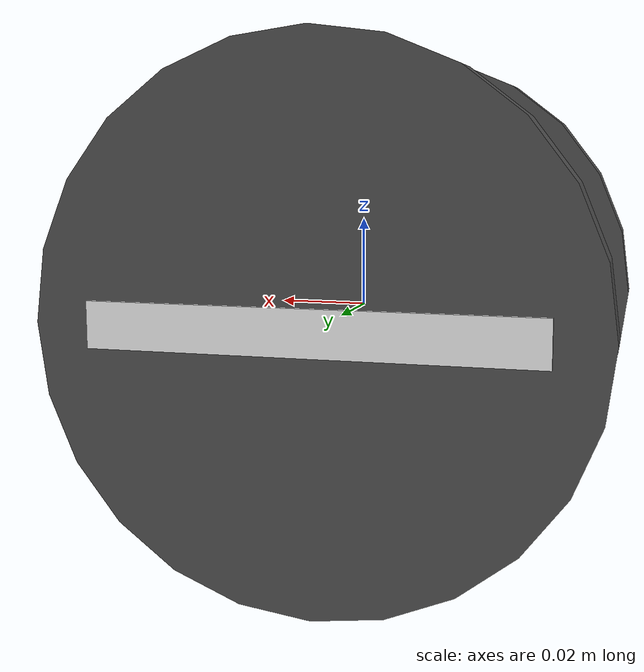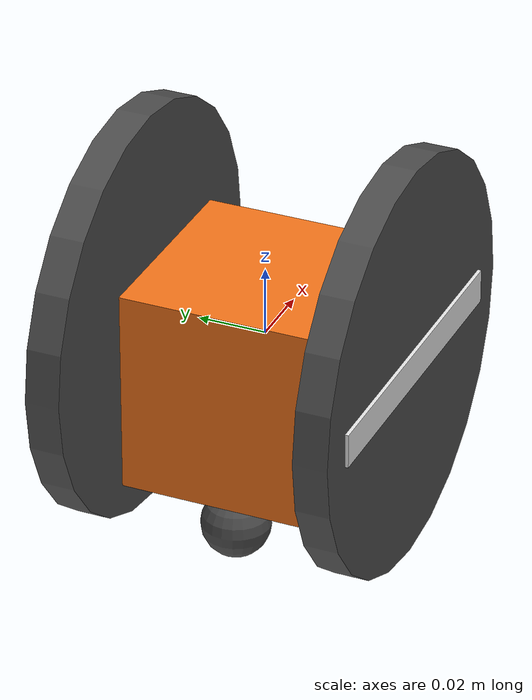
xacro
<?xml version="1.0"?>
<robot name="sphere_scout" xmlns:xacro="http://www.ros.org/wiki/xacro">

  <!-- placeholder values -->
  <xacro:property name="wheel_radius" value="0.06"/>
  <xacro:property name="wheel_width" value="0.01"/>
  <xacro:property name="wheel_mass" value="0.04"/>
  <xacro:property name="cube_size" value="0.06"/>
  <xacro:property name="cube_z" value="-0.01"/>          <!-- cube centre below the axle -->
  <xacro:property name="core_mass" value="0.22"/>
  <xacro:property name="core_com_z" value="-0.025"/>     <!-- ballast keeps the CoM low -->
  <xacro:property name="caster_radius" value="0.01"/>
  <xacro:property name="caster_x" value="0.02"/>         <!-- front and back of the cube -->
  <xacro:property name="slider_mass" value="0.01"/>
  <xacro:property name="shell_extension_max" value="0.01"/>
  <xacro:property name="wheel_y" value="${cube_size / 2 + 0.004 + wheel_width / 2}"/>
  <xacro:property name="wheel_mu" value="0.9"/>
  <xacro:property name="gyro_noise" value="0.001"/>      <!-- rad/s, about MPU-6050 at 100 Hz -->
  <xacro:property name="accel_noise" value="0.04"/>

  <link name="base_link">
    <inertial>
      <origin xyz="0 0 ${core_com_z}"/>
      <mass value="${core_mass}"/>
      <inertia ixx="${core_mass * cube_size**2 / 6}" iyy="${core_mass * cube_size**2 / 6}"
               izz="${core_mass * cube_size**2 / 6}" ixy="0" ixz="0" iyz="0"/>
    </inertial>
    <visual>
      <origin xyz="0 0 ${cube_z}"/>
      <geometry><box size="${cube_size} ${cube_size} ${cube_size}"/></geometry>
      <material name="orange"><color rgba="0.95 0.45 0.1 1"/></material>
    </visual>
    <collision>
      <origin xyz="0 0 ${cube_z}"/>
      <geometry><box size="${cube_size} ${cube_size} ${cube_size}"/></geometry>
    </collision>
    <!-- casters: bottoms level with the wheels' contact points -->
    <xacro:macro name="caster" params="x">
      <visual>
        <origin xyz="${x} 0 ${caster_radius - wheel_radius}"/>
        <geometry><sphere radius="${caster_radius}"/></geometry>
        <material name="grey"/>
      </visual>
      <collision>
        <origin xyz="${x} 0 ${caster_radius - wheel_radius}"/>
        <geometry><sphere radius="${caster_radius}"/></geometry>
      </collision>
    </xacro:macro>
    <xacro:caster x="${caster_x}"/>
    <xacro:caster x="${-caster_x}"/>
  </link>
  <!-- frictionless casters (applies to the whole cube; only the casters touch the ground) -->
  <gazebo reference="base_link">
    <mu1>0.0</mu1>
    <mu2>0.0</mu2>
  </gazebo>

  <!-- side: +1 left, -1 right. The right prismatic axis is reversed so a positive
       /shell/cmd opens both shells. -->
  <xacro:macro name="shell" params="name side">
    <joint name="${name}_shell_joint" type="prismatic">
      <parent link="base_link"/>
      <child link="${name}_slider"/>
      <origin xyz="0 ${side * wheel_y} 0"/>
      <axis xyz="0 ${side} 0"/>
      <limit lower="0" upper="${shell_extension_max}" effort="5" velocity="0.05"/>
    </joint>
    <link name="${name}_slider">
      <inertial>
        <mass value="${slider_mass}"/>
        <inertia ixx="1e-5" iyy="1e-5" izz="1e-5" ixy="0" ixz="0" iyz="0"/>
      </inertial>
    </link>
    <joint name="${name}_wheel_joint" type="continuous">
      <parent link="${name}_slider"/>
      <child link="${name}_shell"/>
      <axis xyz="0 1 0"/>
    </joint>
    <link name="${name}_shell">
      <inertial>
        <mass value="${wheel_mass}"/>
        <inertia ixx="${wheel_mass * (3 * wheel_radius**2 + wheel_width**2) / 12}"
                 iyy="${wheel_mass * wheel_radius**2 / 2}"
                 izz="${wheel_mass * (3 * wheel_radius**2 + wheel_width**2) / 12}"
                 ixy="0" ixz="0" iyz="0"/>
      </inertial>
      <visual>
        <origin rpy="${pi / 2} 0 0"/>
        <geometry><cylinder radius="${wheel_radius}" length="${wheel_width}"/></geometry>
        <material name="grey"><color rgba="0.3 0.3 0.3 1"/></material>
      </visual>
      <!-- a spoke so the wheel's rotation is visible -->
      <visual>
        <origin xyz="0 ${side * wheel_width / 2} 0"/>
        <geometry><box size="${wheel_radius * 1.6} 0.002 0.01"/></geometry>
        <material name="white"><color rgba="0.9 0.9 0.9 1"/></material>
      </visual>
      <collision>
        <origin rpy="${pi / 2} 0 0"/>
        <geometry><cylinder radius="${wheel_radius}" length="${wheel_width}"/></geometry>
      </collision>
    </link>
    <gazebo reference="${name}_shell">
      <mu1>${wheel_mu}</mu1>
      <mu2>${wheel_mu}</mu2>
    </gazebo>
  </xacro:macro>
  <xacro:shell name="left" side="1"/>
  <xacro:shell name="right" side="-1"/>

  <joint name="thermal_joint" type="fixed">
    <parent link="base_link"/>
    <child link="thermal_link"/>
    <origin xyz="${cube_size / 2 + 0.001} 0 -0.005"/>
  </joint>
  <link name="thermal_link">
    <visual>
      <geometry><box size="0.004 0.012 0.012"/></geometry>
      <material name="black"><color rgba="0.05 0.05 0.05 1"/></material>
    </visual>
  </link>

  <joint name="imu_joint" type="fixed">
    <parent link="base_link"/>
    <child link="imu_link"/>
    <origin xyz="0 0 -0.01"/>
  </joint>
  <link name="imu_link"/>

  <gazebo>
    <plugin filename="gz-sim-diff-drive-system" name="gz::sim::systems::DiffDrive">
      <left_joint>left_wheel_joint</left_joint>
      <right_joint>right_wheel_joint</right_joint>
      <wheel_separation>${2 * wheel_y}</wheel_separation>
      <wheel_radius>${wheel_radius}</wheel_radius>
      <max_linear_velocity>0.3</max_linear_velocity>
      <max_linear_acceleration>0.5</max_linear_acceleration>
      <max_angular_velocity>1.5</max_angular_velocity>
      <max_angular_acceleration>3.0</max_angular_acceleration>
      <topic>/cmd_vel</topic>
      <odom_topic>/odom</odom_topic>
      <odom_publish_frequency>30</odom_publish_frequency>
      <frame_id>odom</frame_id>
      <child_frame_id>base_link</child_frame_id>
      <!-- not bridged: only the EKF publishes odom -> base_link -->
      <tf_topic>/model/sphere_scout/tf</tf_topic>
    </plugin>
    <!-- one controller per shell on the same topic: one command moves both, like the single
         servo. Velocity mode so sideways wheel friction can't stall the stand-in. -->
    <xacro:macro name="shell_controller" params="name">
      <plugin filename="gz-sim-joint-position-controller-system"
              name="gz::sim::systems::JointPositionController">
        <joint_name>${name}_shell_joint</joint_name>
        <topic>/shell_cmd</topic>
        <use_velocity_commands>true</use_velocity_commands>
        <p_gain>5</p_gain>
        <cmd_max>0.05</cmd_max>
        <cmd_min>-0.05</cmd_min>
      </plugin>
    </xacro:macro>
    <xacro:shell_controller name="left"/>
    <xacro:shell_controller name="right"/>
    <plugin filename="gz-sim-joint-state-publisher-system"
            name="gz::sim::systems::JointStatePublisher">
      <topic>/joint_states</topic>
      <update_rate>50</update_rate>
    </plugin>
  </gazebo>

  <gazebo reference="thermal_link">
    <sensor name="thermal_camera" type="thermal">
      <gz_frame_id>thermal_link</gz_frame_id>
      <topic>/thermal/image_raw</topic>
      <update_rate>8</update_rate>
      <always_on>true</always_on>
      <camera>
        <horizontal_fov>0.96</horizontal_fov>  <!-- 55 deg, MLX90640 -->
        <image><width>32</width><height>24</height><format>L16</format></image>
        <clip><near>0.05</near><far>20</far></clip>
      </camera>
      <plugin filename="gz-sim-thermal-sensor-system" name="gz::sim::systems::ThermalSensor">
        <resolution>0.01</resolution>  <!-- kelvin per pixel count -->
      </plugin>
    </sensor>
  </gazebo>

  <xacro:macro name="noise_xyz" params="stddev">
    <x><noise type="gaussian"><mean>0</mean><stddev>${stddev}</stddev></noise></x>
    <y><noise type="gaussian"><mean>0</mean><stddev>${stddev}</stddev></noise></y>
    <z><noise type="gaussian"><mean>0</mean><stddev>${stddev}</stddev></noise></z>
  </xacro:macro>
  <gazebo reference="imu_link">
    <sensor name="imu" type="imu">
      <gz_frame_id>imu_link</gz_frame_id>
      <topic>/imu/data</topic>
      <update_rate>100</update_rate>
      <always_on>true</always_on>
      <imu>
        <angular_velocity><xacro:noise_xyz stddev="${gyro_noise}"/></angular_velocity>
        <linear_acceleration><xacro:noise_xyz stddev="${accel_noise}"/></linear_acceleration>
      </imu>
    </sensor>
  </gazebo>
</robot>
